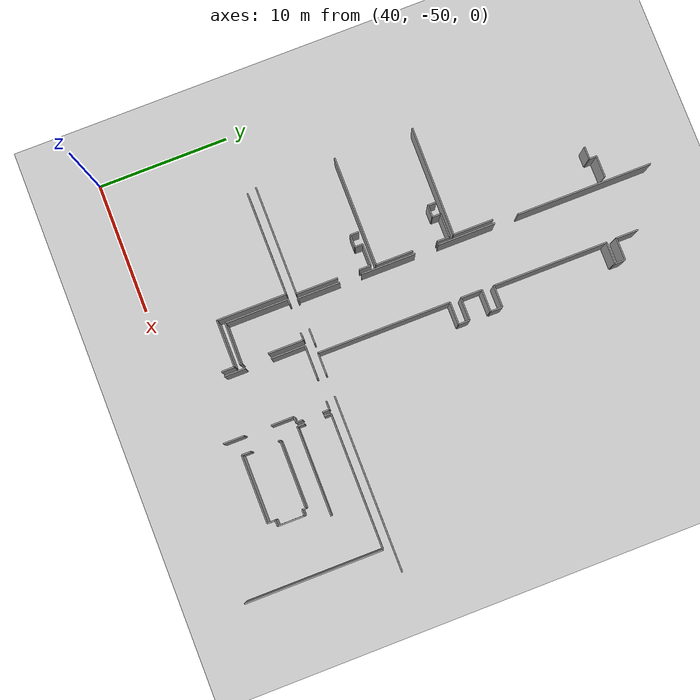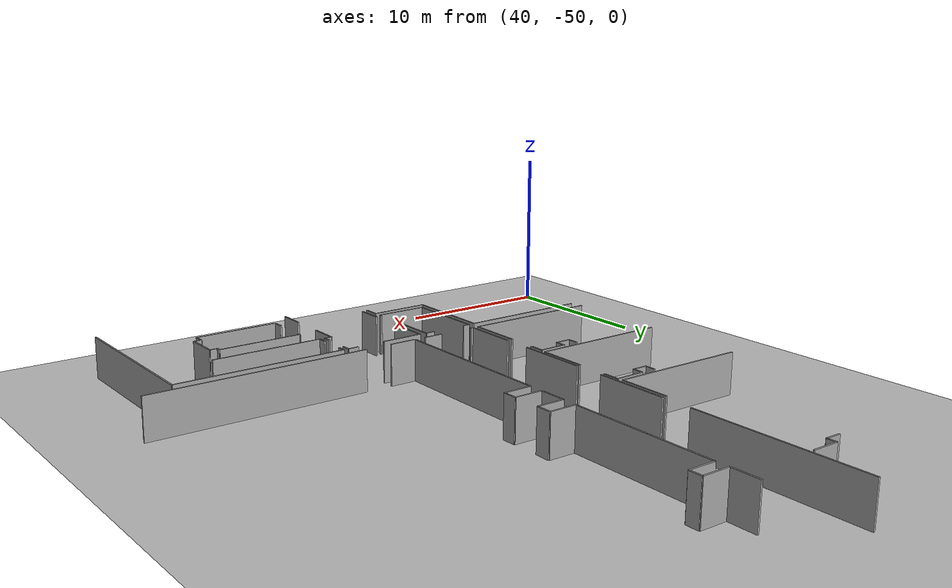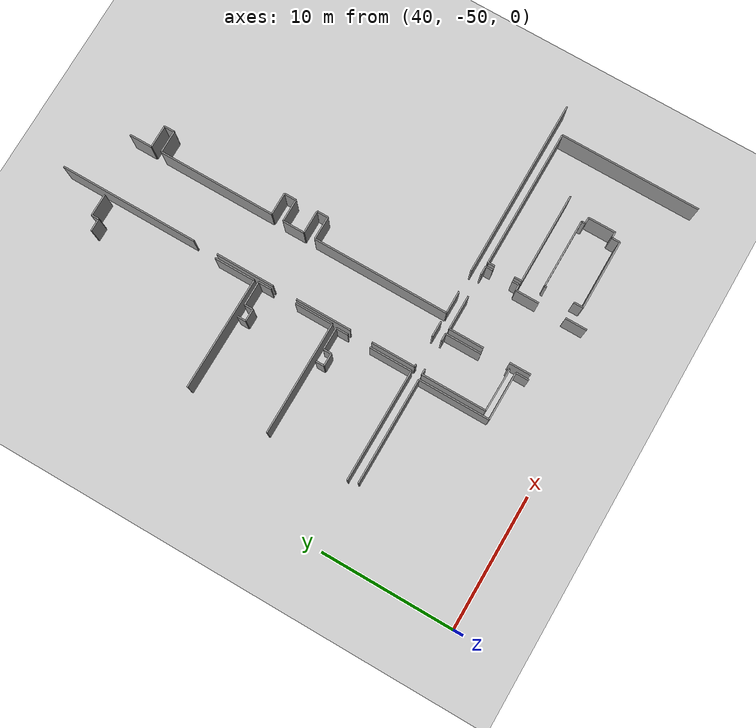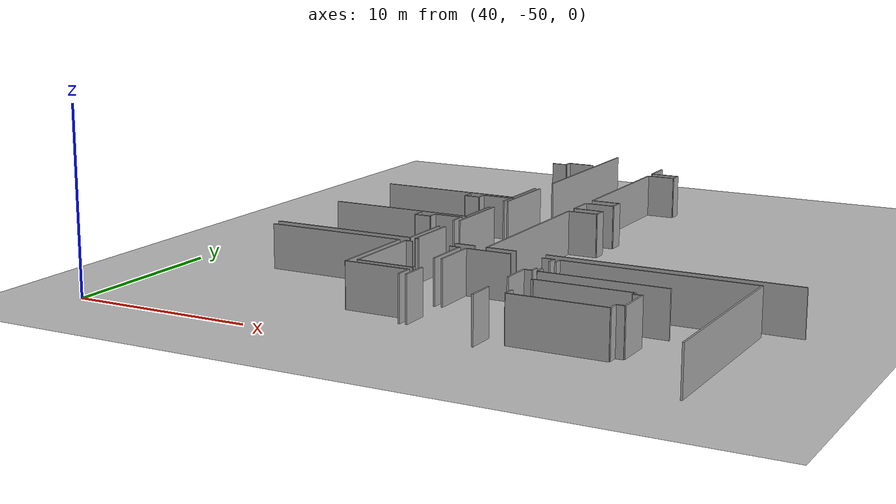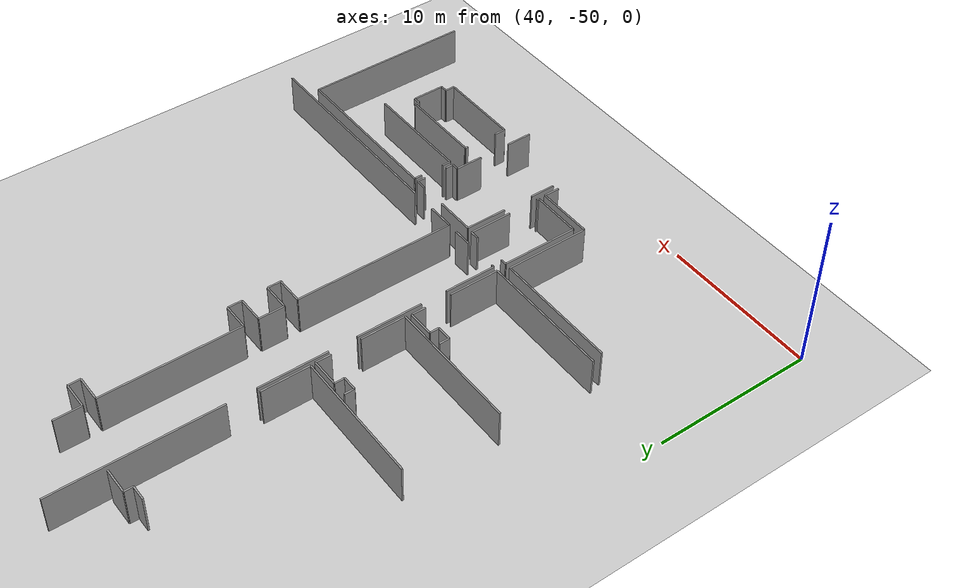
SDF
<sdf version="1.6">
 <world name="default">
  <model name="ground_plane">
   <static>1</static>
   <link name="link">
    <collision name="collision">
     <geometry><plane><normal>0 0 1</normal><size>100 100</size></plane></geometry>
     <surface><friction><ode><mu>100</mu><mu2>50</mu2></ode></friction></surface>
    </collision>
    <visual name="visual">
     <cast_shadows>0</cast_shadows>
     <geometry><plane><normal>0 0 1</normal><size>100 100</size></plane></geometry>
     <material>
      <script><uri>file://media/materials/scripts/gazebo.material</uri><name>Gazebo/Grey</name></script>
     </material>
    </visual>
   </link>
  </model>
  <model name="50036893">
   <static>1</static>
   <link name="Wall_266">
    <collision name="Wall_266_Collision">
     <geometry><box><size>1.59526240038 0.1 2.5</size></box></geometry>
     <pose>0.797631200188 0 1.25 0 0 0</pose>
    </collision>
    <visual name="Wall_266_Visual">
     <pose>0.797631200188 0 1.25 0 0 0</pose>
     <geometry><box><size>1.59526240038 0.1 2.5</size></box></geometry>
     <material>
      <script><uri>file://media/materials/scripts/gazebo.material</uri><name>Gazebo/Grey</name></script>
      <ambient>1 1 1 1</ambient>
     </material>
    </visual>
    <pose>131.065896511 -114.038435933 0 0 0 1.57079632679</pose>
   </link>
   <link name="Wall_267">
    <collision name="Wall_267_Collision">
     <geometry><box><size>2.58488305002 0.1 2.5</size></box></geometry>
     <pose>1.29244152501 0 1.25 0 0 0</pose>
    </collision>
    <visual name="Wall_267_Visual">
     <pose>1.29244152501 0 1.25 0 0 0</pose>
     <geometry><box><size>2.58488305002 0.1 2.5</size></box></geometry>
     <material>
      <script><uri>file://media/materials/scripts/gazebo.material</uri><name>Gazebo/Grey</name></script>
      <ambient>1 1 1 1</ambient>
     </material>
    </visual>
    <pose>131.065896511 -110.473062511 0 0 0 1.57079632679</pose>
   </link>
   <link name="Wall_268">
    <collision name="Wall_268_Collision">
     <geometry><box><size>2.53618823589 0.1 2.5</size></box></geometry>
     <pose>1.26809411795 0 1.25 0 0 0</pose>
    </collision>
    <visual name="Wall_268_Visual">
     <pose>1.26809411795 0 1.25 0 0 0</pose>
     <geometry><box><size>2.53618823589 0.1 2.5</size></box></geometry>
     <material>
      <script><uri>file://media/materials/scripts/gazebo.material</uri><name>Gazebo/Grey</name></script>
      <ambient>1 1 1 1</ambient>
     </material>
    </visual>
    <pose>131.065896511 -107.888179461 0 0 0 0.0</pose>
   </link>
   <link name="Wall_269">
    <collision name="Wall_269_Collision">
     <geometry><box><size>0.649264188388 0.1 2.5</size></box></geometry>
     <pose>0.324632094194 0 1.25 0 0 0</pose>
    </collision>
    <visual name="Wall_269_Visual">
     <pose>0.324632094194 0 1.25 0 0 0</pose>
     <geometry><box><size>0.649264188388 0.1 2.5</size></box></geometry>
     <material>
      <script><uri>file://media/materials/scripts/gazebo.material</uri><name>Gazebo/Grey</name></script>
      <ambient>1 1 1 1</ambient>
     </material>
    </visual>
    <pose>135.339373688 -107.888179461 0 0 0 0.0</pose>
   </link>
   <link name="Wall_270">
    <collision name="Wall_270_Collision">
     <geometry><box><size>0.536150193067 0.1 2.5</size></box></geometry>
     <pose>0.268075096534 0 1.25 0 0 0</pose>
    </collision>
    <visual name="Wall_270_Visual">
     <pose>0.268075096534 0 1.25 0 0 0</pose>
     <geometry><box><size>0.536150193067 0.1 2.5</size></box></geometry>
     <material>
      <script><uri>file://media/materials/scripts/gazebo.material</uri><name>Gazebo/Grey</name></script>
      <ambient>1 1 1 1</ambient>
     </material>
    </visual>
    <pose>135.988637877 -107.888179461 0 0 0 -1.57079632679</pose>
   </link>
   <link name="Wall_271">
    <collision name="Wall_271_Collision">
     <geometry><box><size>0.507491266002 0.1 2.5</size></box></geometry>
     <pose>0.253745633001 0 1.25 0 0 0</pose>
    </collision>
    <visual name="Wall_271_Visual">
     <pose>0.253745633001 0 1.25 0 0 0</pose>
     <geometry><box><size>0.507491266002 0.1 2.5</size></box></geometry>
     <material>
      <script><uri>file://media/materials/scripts/gazebo.material</uri><name>Gazebo/Grey</name></script>
      <ambient>1 1 1 1</ambient>
     </material>
    </visual>
    <pose>135.988637877 -109.920173475 0 0 0 -1.57079632679</pose>
   </link>
   <link name="Wall_272">
    <collision name="Wall_272_Collision">
     <geometry><box><size>0.436224376573 0.1 2.5</size></box></geometry>
     <pose>0.218112188287 0 1.25 0 0 0</pose>
    </collision>
    <visual name="Wall_272_Visual">
     <pose>0.218112188287 0 1.25 0 0 0</pose>
     <geometry><box><size>0.436224376573 0.1 2.5</size></box></geometry>
     <material>
      <script><uri>file://media/materials/scripts/gazebo.material</uri><name>Gazebo/Grey</name></script>
      <ambient>1 1 1 1</ambient>
     </material>
    </visual>
    <pose>135.988637877 -110.427664741 0 0 0 3.14159265359</pose>
   </link>
   <link name="Wall_273">
    <collision name="Wall_273_Collision">
     <geometry><box><size>1.74007874864 0.1 2.5</size></box></geometry>
     <pose>0.870039374322 0 1.25 0 0 0</pose>
    </collision>
    <visual name="Wall_273_Visual">
     <pose>0.870039374322 0 1.25 0 0 0</pose>
     <geometry><box><size>1.74007874864 0.1 2.5</size></box></geometry>
     <material>
      <script><uri>file://media/materials/scripts/gazebo.material</uri><name>Gazebo/Grey</name></script>
      <ambient>1 1 1 1</ambient>
     </material>
    </visual>
    <pose>135.5524135 -110.427664741 0 0 0 -1.57079632679</pose>
   </link>
   <link name="Wall_274">
    <collision name="Wall_274_Collision">
     <geometry><box><size>1.60211010861 0.1 2.5</size></box></geometry>
     <pose>0.801055054306 0 1.25 0 0 0</pose>
    </collision>
    <visual name="Wall_274_Visual">
     <pose>0.801055054306 0 1.25 0 0 0</pose>
     <geometry><box><size>1.60211010861 0.1 2.5</size></box></geometry>
     <material>
      <script><uri>file://media/materials/scripts/gazebo.material</uri><name>Gazebo/Grey</name></script>
      <ambient>1 1 1 1</ambient>
     </material>
    </visual>
    <pose>135.5524135 -114.192889796 0 0 0 -1.57079632679</pose>
   </link>
   <link name="Wall_278">
    <collision name="Wall_278_Collision">
     <geometry><box><size>10.3501841907 0.1 2.5</size></box></geometry>
     <pose>5.17509209534 0 1.25 0 0 0</pose>
    </collision>
    <visual name="Wall_278_Visual">
     <pose>5.17509209534 0 1.25 0 0 0</pose>
     <geometry><box><size>10.3501841907 0.1 2.5</size></box></geometry>
     <material>
      <script><uri>file://media/materials/scripts/gazebo.material</uri><name>Gazebo/Grey</name></script>
      <ambient>1 1 1 1</ambient>
     </material>
    </visual>
    <pose>136.262546206 -107.889954792 0 0 0 0.0</pose>
   </link>
   <link name="Wall_279">
    <collision name="Wall_279_Collision">
     <geometry><box><size>10.4534070519 0.1 2.5</size></box></geometry>
     <pose>5.22670352594 0 1.25 0 0 0</pose>
    </collision>
    <visual name="Wall_279_Visual">
     <pose>5.22670352594 0 1.25 0 0 0</pose>
     <geometry><box><size>10.4534070519 0.1 2.5</size></box></geometry>
     <material>
      <script><uri>file://media/materials/scripts/gazebo.material</uri><name>Gazebo/Grey</name></script>
      <ambient>1 1 1 1</ambient>
     </material>
    </visual>
    <pose>146.612730397 -107.889954792 0 0 0 -1.57079632679</pose>
   </link>
   <link name="Wall_283">
    <collision name="Wall_283_Collision">
     <geometry><box><size>6.79952066042 0.1 2.5</size></box></geometry>
     <pose>3.39976033021 0 1.25 0 0 0</pose>
    </collision>
    <visual name="Wall_283_Visual">
     <pose>3.39976033021 0 1.25 0 0 0</pose>
     <geometry><box><size>6.79952066042 0.1 2.5</size></box></geometry>
     <material>
      <script><uri>file://media/materials/scripts/gazebo.material</uri><name>Gazebo/Grey</name></script>
      <ambient>1 1 1 1</ambient>
     </material>
    </visual>
    <pose>143.092501125 -110.448968722 0 0 0 3.14159265359</pose>
   </link>
   <link name="Wall_284">
    <collision name="Wall_284_Collision">
     <geometry><box><size>0.54553408954 0.1 2.5</size></box></geometry>
     <pose>0.27276704477 0 1.25 0 0 0</pose>
    </collision>
    <visual name="Wall_284_Visual">
     <pose>0.27276704477 0 1.25 0 0 0</pose>
     <geometry><box><size>0.54553408954 0.1 2.5</size></box></geometry>
     <material>
      <script><uri>file://media/materials/scripts/gazebo.material</uri><name>Gazebo/Grey</name></script>
      <ambient>1 1 1 1</ambient>
     </material>
    </visual>
    <pose>136.292980465 -110.448968722 0 0 0 1.57079632679</pose>
   </link>
   <link name="Wall_285">
    <collision name="Wall_285_Collision">
     <geometry><box><size>0.470209298934 0.1 2.5</size></box></geometry>
     <pose>0.235104649467 0 1.25 0 0 0</pose>
    </collision>
    <visual name="Wall_285_Visual">
     <pose>0.235104649467 0 1.25 0 0 0</pose>
     <geometry><box><size>0.470209298934 0.1 2.5</size></box></geometry>
     <material>
      <script><uri>file://media/materials/scripts/gazebo.material</uri><name>Gazebo/Grey</name></script>
      <ambient>1 1 1 1</ambient>
     </material>
    </visual>
    <pose>136.292980465 -108.398206915 0 0 0 1.57079632679</pose>
   </link>
   <link name="Wall_286">
    <collision name="Wall_286_Collision">
     <geometry><box><size>0.0487185850918 0.1 2.5</size></box></geometry>
     <pose>0.0243592925459 0 1.25 0 0 0</pose>
    </collision>
    <visual name="Wall_286_Visual">
     <pose>0.0243592925459 0 1.25 0 0 0</pose>
     <geometry><box><size>0.0487185850918 0.1 2.5</size></box></geometry>
     <material>
      <script><uri>file://media/materials/scripts/gazebo.material</uri><name>Gazebo/Grey</name></script>
      <ambient>1 1 1 1</ambient>
     </material>
    </visual>
    <pose>136.292980465 -107.927997616 0 0 0 2.24553726902</pose>
   </link>
   <link name="Wall_287">
    <collision name="Wall_287_Collision">
     <geometry><box><size>5.10534691885 0.1 2.5</size></box></geometry>
     <pose>2.55267345942 0 1.25 0 0 0</pose>
    </collision>
    <visual name="Wall_287_Visual">
     <pose>2.55267345942 0 1.25 0 0 0</pose>
     <geometry><box><size>5.10534691885 0.1 2.5</size></box></geometry>
     <material>
      <script><uri>file://media/materials/scripts/gazebo.material</uri><name>Gazebo/Grey</name></script>
      <ambient>1 1 1 1</ambient>
     </material>
    </visual>
    <pose>136.812899053 -111.935682266 0 0 0 0.0</pose>
   </link>
   <link name="Wall_288">
    <collision name="Wall_288_Collision">
     <geometry><box><size>0.275683661241 0.1 2.5</size></box></geometry>
     <pose>0.137841830621 0 1.25 0 0 0</pose>
    </collision>
    <visual name="Wall_288_Visual">
     <pose>0.137841830621 0 1.25 0 0 0</pose>
     <geometry><box><size>0.275683661241 0.1 2.5</size></box></geometry>
     <material>
      <script><uri>file://media/materials/scripts/gazebo.material</uri><name>Gazebo/Grey</name></script>
      <ambient>1 1 1 1</ambient>
     </material>
    </visual>
    <pose>141.918245972 -111.935682266 0 0 0 -1.57079632679</pose>
   </link>
   <link name="Wall_289">
    <collision name="Wall_289_Collision">
     <geometry><box><size>0.461586258932 0.1 2.5</size></box></geometry>
     <pose>0.230793129466 0 1.25 0 0 0</pose>
    </collision>
    <visual name="Wall_289_Visual">
     <pose>0.230793129466 0 1.25 0 0 0</pose>
     <geometry><box><size>0.461586258932 0.1 2.5</size></box></geometry>
     <material>
      <script><uri>file://media/materials/scripts/gazebo.material</uri><name>Gazebo/Grey</name></script>
      <ambient>1 1 1 1</ambient>
     </material>
    </visual>
    <pose>141.918245972 -112.211365928 0 0 0 0.0</pose>
   </link>
   <link name="Wall_290">
    <collision name="Wall_290_Collision">
     <geometry><box><size>2.02996506401 0.1 2.5</size></box></geometry>
     <pose>1.014982532 0 1.25 0 0 0</pose>
    </collision>
    <visual name="Wall_290_Visual">
     <pose>1.014982532 0 1.25 0 0 0</pose>
     <geometry><box><size>2.02996506401 0.1 2.5</size></box></geometry>
     <material>
      <script><uri>file://media/materials/scripts/gazebo.material</uri><name>Gazebo/Grey</name></script>
      <ambient>1 1 1 1</ambient>
     </material>
    </visual>
    <pose>142.379832231 -112.211365928 0 0 0 -1.57079632679</pose>
   </link>
   <link name="Wall_291">
    <collision name="Wall_291_Collision">
     <geometry><box><size>0.448905317753 0.1 2.5</size></box></geometry>
     <pose>0.224452658876 0 1.25 0 0 0</pose>
    </collision>
    <visual name="Wall_291_Visual">
     <pose>0.224452658876 0 1.25 0 0 0</pose>
     <geometry><box><size>0.448905317753 0.1 2.5</size></box></geometry>
     <material>
      <script><uri>file://media/materials/scripts/gazebo.material</uri><name>Gazebo/Grey</name></script>
      <ambient>1 1 1 1</ambient>
     </material>
    </visual>
    <pose>142.379832231 -114.241330992 0 0 0 3.14159265359</pose>
   </link>
   <link name="Wall_292">
    <collision name="Wall_292_Collision">
     <geometry><box><size>0.608938795437 0.1 2.5</size></box></geometry>
     <pose>0.304469397719 0 1.25 0 0 0</pose>
    </collision>
    <visual name="Wall_292_Visual">
     <pose>0.304469397719 0 1.25 0 0 0</pose>
     <geometry><box><size>0.608938795437 0.1 2.5</size></box></geometry>
     <material>
      <script><uri>file://media/materials/scripts/gazebo.material</uri><name>Gazebo/Grey</name></script>
      <ambient>1 1 1 1</ambient>
     </material>
    </visual>
    <pose>141.930926913 -114.241330992 0 0 0 -1.57079632679</pose>
   </link>
   <link name="Wall_293">
    <collision name="Wall_293_Collision">
     <geometry><box><size>5.16114306004 0.1 2.5</size></box></geometry>
     <pose>2.58057153002 0 1.25 0 0 0</pose>
    </collision>
    <visual name="Wall_293_Visual">
     <pose>2.58057153002 0 1.25 0 0 0</pose>
     <geometry><box><size>5.16114306004 0.1 2.5</size></box></geometry>
     <material>
      <script><uri>file://media/materials/scripts/gazebo.material</uri><name>Gazebo/Grey</name></script>
      <ambient>1 1 1 1</ambient>
     </material>
    </visual>
    <pose>141.930926913 -114.850269787 0 0 0 3.14159265359</pose>
   </link>
   <link name="Wall_294">
    <collision name="Wall_294_Collision">
     <geometry><box><size>0.695930051928 0.1 2.5</size></box></geometry>
     <pose>0.347965025964 0 1.25 0 0 0</pose>
    </collision>
    <visual name="Wall_294_Visual">
     <pose>0.347965025964 0 1.25 0 0 0</pose>
     <geometry><box><size>0.695930051928 0.1 2.5</size></box></geometry>
     <material>
      <script><uri>file://media/materials/scripts/gazebo.material</uri><name>Gazebo/Grey</name></script>
      <ambient>1 1 1 1</ambient>
     </material>
    </visual>
    <pose>136.769783853 -114.850269787 0 0 0 1.57079632679</pose>
   </link>
   <link name="Wall_295">
    <collision name="Wall_295_Collision">
     <geometry><box><size>0.165866710627 0.1 2.5</size></box></geometry>
     <pose>0.0829333553136 0 1.25 0 0 0</pose>
    </collision>
    <visual name="Wall_295_Visual">
     <pose>0.0829333553136 0 1.25 0 0 0</pose>
     <geometry><box><size>0.165866710627 0.1 2.5</size></box></geometry>
     <material>
      <script><uri>file://media/materials/scripts/gazebo.material</uri><name>Gazebo/Grey</name></script>
      <ambient>1 1 1 1</ambient>
     </material>
    </visual>
    <pose>136.769783853 -112.100280883 0 0 0 1.57079632679</pose>
   </link>
   <link name="Wall_296">
    <collision name="Wall_296_Collision">
     <geometry><box><size>0.0431338444219 0.1 2.5</size></box></geometry>
     <pose>0.0215669222109 0 1.25 0 0 0</pose>
    </collision>
    <visual name="Wall_296_Visual">
     <pose>0.0215669222109 0 1.25 0 0 0</pose>
     <geometry><box><size>0.0431338444219 0.1 2.5</size></box></geometry>
     <material>
      <script><uri>file://media/materials/scripts/gazebo.material</uri><name>Gazebo/Grey</name></script>
      <ambient>1 1 1 1</ambient>
     </material>
    </visual>
    <pose>136.769783853 -111.934414172 0 0 0 -0.0294032882044</pose>
   </link>
   <link name="Wall_298">
    <collision name="Wall_298_Collision">
     <geometry><box><size>7.87486447244 0.1 2.5</size></box></geometry>
     <pose>3.93743223622 0 1.25 0 0 0</pose>
    </collision>
    <visual name="Wall_298_Visual">
     <pose>3.93743223622 0 1.25 0 0 0</pose>
     <geometry><box><size>7.87486447244 0.1 2.5</size></box></geometry>
     <material>
      <script><uri>file://media/materials/scripts/gazebo.material</uri><name>Gazebo/Grey</name></script>
      <ambient>1 1 1 1</ambient>
     </material>
    </visual>
    <pose>119.237114579 -107.832129701 0 0 0 0.0</pose>
   </link>
   <link name="Wall_299">
    <collision name="Wall_299_Collision">
     <geometry><box><size>5.29277122948 0.1 2.5</size></box></geometry>
     <pose>2.64638561474 0 1.25 0 0 0</pose>
    </collision>
    <visual name="Wall_299_Visual">
     <pose>2.64638561474 0 1.25 0 0 0</pose>
     <geometry><box><size>5.29277122948 0.1 2.5</size></box></geometry>
     <material>
      <script><uri>file://media/materials/scripts/gazebo.material</uri><name>Gazebo/Grey</name></script>
      <ambient>1 1 1 1</ambient>
     </material>
    </visual>
    <pose>127.111979051 -107.832129701 0 0 0 -1.57079632679</pose>
   </link>
   <link name="Wall_300">
    <collision name="Wall_300_Collision">
     <geometry><box><size>3.58109778908 0.1 2.5</size></box></geometry>
     <pose>1.79054889454 0 1.25 0 0 0</pose>
    </collision>
    <visual name="Wall_300_Visual">
     <pose>1.79054889454 0 1.25 0 0 0</pose>
     <geometry><box><size>3.58109778908 0.1 2.5</size></box></geometry>
     <material>
      <script><uri>file://media/materials/scripts/gazebo.material</uri><name>Gazebo/Grey</name></script>
      <ambient>1 1 1 1</ambient>
     </material>
    </visual>
    <pose>127.111979051 -113.12490093 0 0 0 0.0</pose>
   </link>
   <link name="Wall_301">
    <collision name="Wall_301_Collision">
     <geometry><box><size>0.986069986114 0.1 2.5</size></box></geometry>
     <pose>0.493034993057 0 1.25 0 0 0</pose>
    </collision>
    <visual name="Wall_301_Visual">
     <pose>0.493034993057 0 1.25 0 0 0</pose>
     <geometry><box><size>0.986069986114 0.1 2.5</size></box></geometry>
     <material>
      <script><uri>file://media/materials/scripts/gazebo.material</uri><name>Gazebo/Grey</name></script>
      <ambient>1 1 1 1</ambient>
     </material>
    </visual>
    <pose>130.69307684 -113.12490093 0 0 0 -1.57079632679</pose>
   </link>
   <link name="Wall_313">
    <collision name="Wall_313_Collision">
     <geometry><box><size>13.3251329914 0.1 2.5</size></box></geometry>
     <pose>6.66256649569 0 1.25 0 0 0</pose>
    </collision>
    <visual name="Wall_313_Visual">
     <pose>6.66256649569 0 1.25 0 0 0</pose>
     <geometry><box><size>13.3251329914 0.1 2.5</size></box></geometry>
     <material>
      <script><uri>file://media/materials/scripts/gazebo.material</uri><name>Gazebo/Grey</name></script>
      <ambient>1 1 1 1</ambient>
     </material>
    </visual>
    <pose>148.557986774 -107.194024741 0 0 0 3.14159265359</pose>
   </link>
   <link name="Wall_314">
    <collision name="Wall_314_Collision">
     <geometry><box><size>1.67642042392 0.1 2.5</size></box></geometry>
     <pose>0.838210211962 0 1.25 0 0 0</pose>
    </collision>
    <visual name="Wall_314_Visual">
     <pose>0.838210211962 0 1.25 0 0 0</pose>
     <geometry><box><size>1.67642042392 0.1 2.5</size></box></geometry>
     <material>
      <script><uri>file://media/materials/scripts/gazebo.material</uri><name>Gazebo/Grey</name></script>
      <ambient>1 1 1 1</ambient>
     </material>
    </visual>
    <pose>133.576722864 -107.194024741 0 0 0 3.14159265359</pose>
   </link>
   <link name="Wall_315">
    <collision name="Wall_315_Collision">
     <geometry><box><size>10.1373979977 0.1 2.5</size></box></geometry>
     <pose>5.06869899884 0 1.25 0 0 0</pose>
    </collision>
    <visual name="Wall_315_Visual">
     <pose>5.06869899884 0 1.25 0 0 0</pose>
     <geometry><box><size>10.1373979977 0.1 2.5</size></box></geometry>
     <material>
      <script><uri>file://media/materials/scripts/gazebo.material</uri><name>Gazebo/Grey</name></script>
      <ambient>1 1 1 1</ambient>
     </material>
    </visual>
    <pose>131.90030244 -107.194024741 0 0 0 1.57079632679</pose>
   </link>
   <link name="Wall_316">
    <collision name="Wall_316_Collision">
     <geometry><box><size>1.71446324746 0.1 2.5</size></box></geometry>
     <pose>0.857231623731 0 1.25 0 0 0</pose>
    </collision>
    <visual name="Wall_316_Visual">
     <pose>0.857231623731 0 1.25 0 0 0</pose>
     <geometry><box><size>1.71446324746 0.1 2.5</size></box></geometry>
     <material>
      <script><uri>file://media/materials/scripts/gazebo.material</uri><name>Gazebo/Grey</name></script>
      <ambient>1 1 1 1</ambient>
     </material>
    </visual>
    <pose>131.90030244 -97.0566267428 0 0 0 0.0</pose>
   </link>
   <link name="Wall_317">
    <collision name="Wall_317_Collision">
     <geometry><box><size>0.844804301375 0.1 2.5</size></box></geometry>
     <pose>0.422402150688 0 1.25 0 0 0</pose>
    </collision>
    <visual name="Wall_317_Visual">
     <pose>0.422402150688 0 1.25 0 0 0</pose>
     <geometry><box><size>0.844804301375 0.1 2.5</size></box></geometry>
     <material>
      <script><uri>file://media/materials/scripts/gazebo.material</uri><name>Gazebo/Grey</name></script>
      <ambient>1 1 1 1</ambient>
     </material>
    </visual>
    <pose>133.614765688 -97.0566267428 0 0 0 1.57079632679</pose>
   </link>
   <link name="Wall_318">
    <collision name="Wall_318_Collision">
     <geometry><box><size>1.72714418864 0.1 2.5</size></box></geometry>
     <pose>0.863572094321 0 1.25 0 0 0</pose>
    </collision>
    <visual name="Wall_318_Visual">
     <pose>0.863572094321 0 1.25 0 0 0</pose>
     <geometry><box><size>1.72714418864 0.1 2.5</size></box></geometry>
     <material>
      <script><uri>file://media/materials/scripts/gazebo.material</uri><name>Gazebo/Grey</name></script>
      <ambient>1 1 1 1</ambient>
     </material>
    </visual>
    <pose>133.614765688 -96.2118224415 0 0 0 3.14159265359</pose>
   </link>
   <link name="Wall_319">
    <collision name="Wall_319_Collision">
     <geometry><box><size>1.62645751568 0.1 2.5</size></box></geometry>
     <pose>0.813228757838 0 1.25 0 0 0</pose>
    </collision>
    <visual name="Wall_319_Visual">
     <pose>0.813228757838 0 1.25 0 0 0</pose>
     <geometry><box><size>1.62645751568 0.1 2.5</size></box></geometry>
     <material>
      <script><uri>file://media/materials/scripts/gazebo.material</uri><name>Gazebo/Grey</name></script>
      <ambient>1 1 1 1</ambient>
     </material>
    </visual>
    <pose>131.887621499 -96.2118224415 0 0 0 1.57079632679</pose>
   </link>
   <link name="Wall_320">
    <collision name="Wall_320_Collision">
     <geometry><box><size>1.6891013651 0.1 2.5</size></box></geometry>
     <pose>0.844550682552 0 1.25 0 0 0</pose>
    </collision>
    <visual name="Wall_320_Visual">
     <pose>0.844550682552 0 1.25 0 0 0</pose>
     <geometry><box><size>1.6891013651 0.1 2.5</size></box></geometry>
     <material>
      <script><uri>file://media/materials/scripts/gazebo.material</uri><name>Gazebo/Grey</name></script>
      <ambient>1 1 1 1</ambient>
     </material>
    </visual>
    <pose>131.887621499 -94.5853649258 0 0 0 0.0</pose>
   </link>
   <link name="Wall_321">
    <collision name="Wall_321_Collision">
     <geometry><box><size>0.907955388449 0.1 2.5</size></box></geometry>
     <pose>0.453977694224 0 1.25 0 0 0</pose>
    </collision>
    <visual name="Wall_321_Visual">
     <pose>0.453977694224 0 1.25 0 0 0</pose>
     <geometry><box><size>0.907955388449 0.1 2.5</size></box></geometry>
     <material>
      <script><uri>file://media/materials/scripts/gazebo.material</uri><name>Gazebo/Grey</name></script>
      <ambient>1 1 1 1</ambient>
     </material>
    </visual>
    <pose>133.576722864 -94.5853649258 0 0 0 1.57079632679</pose>
   </link>
   <link name="Wall_322">
    <collision name="Wall_322_Collision">
     <geometry><box><size>1.66373948274 0.1 2.5</size></box></geometry>
     <pose>0.831869741372 0 1.25 0 0 0</pose>
    </collision>
    <visual name="Wall_322_Visual">
     <pose>0.831869741372 0 1.25 0 0 0</pose>
     <geometry><box><size>1.66373948274 0.1 2.5</size></box></geometry>
     <material>
      <script><uri>file://media/materials/scripts/gazebo.material</uri><name>Gazebo/Grey</name></script>
      <ambient>1 1 1 1</ambient>
     </material>
    </visual>
    <pose>133.576722864 -93.6774095373 0 0 0 3.14159265359</pose>
   </link>
   <link name="Wall_323">
    <collision name="Wall_323_Collision">
     <geometry><box><size>8.73818294794 0.1 2.5</size></box></geometry>
     <pose>4.36909147397 0 1.25 0 0 0</pose>
    </collision>
    <visual name="Wall_323_Visual">
     <pose>4.36909147397 0 1.25 0 0 0</pose>
     <geometry><box><size>8.73818294794 0.1 2.5</size></box></geometry>
     <material>
      <script><uri>file://media/materials/scripts/gazebo.material</uri><name>Gazebo/Grey</name></script>
      <ambient>1 1 1 1</ambient>
     </material>
    </visual>
    <pose>131.912983382 -93.6774095373 0 0 0 1.57079632679</pose>
   </link>
   <link name="Wall_324">
    <collision name="Wall_324_Collision">
     <geometry><box><size>1.65105854156 0.1 2.5</size></box></geometry>
     <pose>0.825529270782 0 1.25 0 0 0</pose>
    </collision>
    <visual name="Wall_324_Visual">
     <pose>0.825529270782 0 1.25 0 0 0</pose>
     <geometry><box><size>1.65105854156 0.1 2.5</size></box></geometry>
     <material>
      <script><uri>file://media/materials/scripts/gazebo.material</uri><name>Gazebo/Grey</name></script>
      <ambient>1 1 1 1</ambient>
     </material>
    </visual>
    <pose>131.912983382 -84.9392265894 0 0 0 0.0</pose>
   </link>
   <link name="Wall_325">
    <collision name="Wall_325_Collision">
     <geometry><box><size>0.769225891946 0.1 2.5</size></box></geometry>
     <pose>0.384612945973 0 1.25 0 0 0</pose>
    </collision>
    <visual name="Wall_325_Visual">
     <pose>0.384612945973 0 1.25 0 0 0</pose>
     <geometry><box><size>0.769225891946 0.1 2.5</size></box></geometry>
     <material>
      <script><uri>file://media/materials/scripts/gazebo.material</uri><name>Gazebo/Grey</name></script>
      <ambient>1 1 1 1</ambient>
     </material>
    </visual>
    <pose>133.564041923 -84.9392265894 0 0 0 1.57079632679</pose>
   </link>
   <link name="Wall_326">
    <collision name="Wall_326_Collision">
     <geometry><box><size>1.6891013651 0.1 2.5</size></box></geometry>
     <pose>0.844550682552 0 1.25 0 0 0</pose>
    </collision>
    <visual name="Wall_326_Visual">
     <pose>0.844550682552 0 1.25 0 0 0</pose>
     <geometry><box><size>1.6891013651 0.1 2.5</size></box></geometry>
     <material>
      <script><uri>file://media/materials/scripts/gazebo.material</uri><name>Gazebo/Grey</name></script>
      <ambient>1 1 1 1</ambient>
     </material>
    </visual>
    <pose>133.564041923 -84.1700006975 0 0 0 3.14159265359</pose>
   </link>
   <link name="Wall_327">
    <collision name="Wall_327_Collision">
     <geometry><box><size>1.70228954393 0.1 2.5</size></box></geometry>
     <pose>0.851144771965 0 1.25 0 0 0</pose>
    </collision>
    <visual name="Wall_327_Visual">
     <pose>0.851144771965 0 1.25 0 0 0</pose>
     <geometry><box><size>1.70228954393 0.1 2.5</size></box></geometry>
     <material>
      <script><uri>file://media/materials/scripts/gazebo.material</uri><name>Gazebo/Grey</name></script>
      <ambient>1 1 1 1</ambient>
     </material>
    </visual>
    <pose>131.874940558 -84.1700006975 0 0 0 1.57079632679</pose>
   </link>
   <link name="Wall_371">
    <collision name="Wall_371_Collision">
     <geometry><box><size>4.80049709289 0.1 2.5</size></box></geometry>
     <pose>2.40024854645 0 1.25 0 0 0</pose>
    </collision>
    <visual name="Wall_371_Visual">
     <pose>2.40024854645 0 1.25 0 0 0</pose>
     <geometry><box><size>4.80049709289 0.1 2.5</size></box></geometry>
     <material>
      <script><uri>file://media/materials/scripts/gazebo.material</uri><name>Gazebo/Grey</name></script>
      <ambient>1 1 1 1</ambient>
     </material>
    </visual>
    <pose>127.505088228 -112.639474502 0 0 0 1.57079632679</pose>
   </link>
   <link name="Wall_372">
    <collision name="Wall_372_Collision">
     <geometry><box><size>0.405790117743 0.1 2.5</size></box></geometry>
     <pose>0.202895058871 0 1.25 0 0 0</pose>
    </collision>
    <visual name="Wall_372_Visual">
     <pose>0.202895058871 0 1.25 0 0 0</pose>
     <geometry><box><size>0.405790117743 0.1 2.5</size></box></geometry>
     <material>
      <script><uri>file://media/materials/scripts/gazebo.material</uri><name>Gazebo/Grey</name></script>
      <ambient>1 1 1 1</ambient>
     </material>
    </visual>
    <pose>127.505088228 -107.838977409 0 0 0 0.0</pose>
   </link>
   <link name="Wall_373">
    <collision name="Wall_373_Collision">
     <geometry><box><size>0.56810616484 0.1 2.5</size></box></geometry>
     <pose>0.28405308242 0 1.25 0 0 0</pose>
    </collision>
    <visual name="Wall_373_Visual">
     <pose>0.28405308242 0 1.25 0 0 0</pose>
     <geometry><box><size>0.56810616484 0.1 2.5</size></box></geometry>
     <material>
      <script><uri>file://media/materials/scripts/gazebo.material</uri><name>Gazebo/Grey</name></script>
      <ambient>1 1 1 1</ambient>
     </material>
    </visual>
    <pose>130.092000228 -107.838977409 0 0 0 0.0</pose>
   </link>
   <link name="Wall_374">
    <collision name="Wall_374_Collision">
     <geometry><box><size>2.69013486181 0.1 2.5</size></box></geometry>
     <pose>1.3450674309 0 1.25 0 0 0</pose>
    </collision>
    <visual name="Wall_374_Visual">
     <pose>1.3450674309 0 1.25 0 0 0</pose>
     <geometry><box><size>2.69013486181 0.1 2.5</size></box></geometry>
     <material>
      <script><uri>file://media/materials/scripts/gazebo.material</uri><name>Gazebo/Grey</name></script>
      <ambient>1 1 1 1</ambient>
     </material>
    </visual>
    <pose>130.660106393 -107.838977409 0 0 0 -1.57079632679</pose>
   </link>
   <link name="Wall_375">
    <collision name="Wall_375_Collision">
     <geometry><box><size>0.152424912977 0.1 2.5</size></box></geometry>
     <pose>0.0762124564885 0 1.25 0 0 0</pose>
    </collision>
    <visual name="Wall_375_Visual">
     <pose>0.0762124564885 0 1.25 0 0 0</pose>
     <geometry><box><size>0.152424912977 0.1 2.5</size></box></geometry>
     <material>
      <script><uri>file://media/materials/scripts/gazebo.material</uri><name>Gazebo/Grey</name></script>
      <ambient>1 1 1 1</ambient>
     </material>
    </visual>
    <pose>130.660106393 -112.521795368 0 0 0 -1.57079632679</pose>
   </link>
   <link name="Wall_376">
    <collision name="Wall_376_Collision">
     <geometry><box><size>3.15520948488 0.1 2.5</size></box></geometry>
     <pose>1.57760474244 0 1.25 0 0 0</pose>
    </collision>
    <visual name="Wall_376_Visual">
     <pose>1.57760474244 0 1.25 0 0 0</pose>
     <geometry><box><size>3.15520948488 0.1 2.5</size></box></geometry>
     <material>
      <script><uri>file://media/materials/scripts/gazebo.material</uri><name>Gazebo/Grey</name></script>
      <ambient>1 1 1 1</ambient>
     </material>
    </visual>
    <pose>130.660106393 -112.674220281 0 0 0 3.13058023705</pose>
   </link>
   <link name="Wall_379">
    <collision name="Wall_379_Collision">
     <geometry><box><size>0.63810496015 0.1 2.5</size></box></geometry>
     <pose>0.319052480075 0 1.25 0 0 0</pose>
    </collision>
    <visual name="Wall_379_Visual">
     <pose>0.319052480075 0 1.25 0 0 0</pose>
     <geometry><box><size>0.63810496015 0.1 2.5</size></box></geometry>
     <material>
      <script><uri>file://media/materials/scripts/gazebo.material</uri><name>Gazebo/Grey</name></script>
      <ambient>1 1 1 1</ambient>
     </material>
    </visual>
    <pose>124.763468745 -101.350139807 0 0 0 -1.57079632679</pose>
   </link>
   <link name="Wall_380">
    <collision name="Wall_380_Collision">
     <geometry><box><size>0.940925835516 0.1 2.5</size></box></geometry>
     <pose>0.470462917758 0 1.25 0 0 0</pose>
    </collision>
    <visual name="Wall_380_Visual">
     <pose>0.470462917758 0 1.25 0 0 0</pose>
     <geometry><box><size>0.940925835516 0.1 2.5</size></box></geometry>
     <material>
      <script><uri>file://media/materials/scripts/gazebo.material</uri><name>Gazebo/Grey</name></script>
      <ambient>1 1 1 1</ambient>
     </material>
    </visual>
    <pose>124.763468745 -101.988244768 0 0 0 0.0</pose>
   </link>
   <link name="Wall_381">
    <collision name="Wall_381_Collision">
     <geometry><box><size>0.594482522493 0.1 2.5</size></box></geometry>
     <pose>0.297241261246 0 1.25 0 0 0</pose>
    </collision>
    <visual name="Wall_381_Visual">
     <pose>0.297241261246 0 1.25 0 0 0</pose>
     <geometry><box><size>0.594482522493 0.1 2.5</size></box></geometry>
     <material>
      <script><uri>file://media/materials/scripts/gazebo.material</uri><name>Gazebo/Grey</name></script>
      <ambient>1 1 1 1</ambient>
     </material>
    </visual>
    <pose>125.70439458 -101.988244768 0 0 0 1.57079632679</pose>
   </link>
   <link name="Wall_382">
    <collision name="Wall_382_Collision">
     <geometry><box><size>1.6535947298 0.1 2.5</size></box></geometry>
     <pose>0.8267973649 0 1.25 0 0 0</pose>
    </collision>
    <visual name="Wall_382_Visual">
     <pose>0.8267973649 0 1.25 0 0 0</pose>
     <geometry><box><size>1.6535947298 0.1 2.5</size></box></geometry>
     <material>
      <script><uri>file://media/materials/scripts/gazebo.material</uri><name>Gazebo/Grey</name></script>
      <ambient>1 1 1 1</ambient>
     </material>
    </visual>
    <pose>125.70439458 -101.393762245 0 0 0 0.0</pose>
   </link>
   <link name="Wall_383">
    <collision name="Wall_383_Collision">
     <geometry><box><size>0.908462626096 0.1 2.5</size></box></geometry>
     <pose>0.454231313048 0 1.25 0 0 0</pose>
    </collision>
    <visual name="Wall_383_Visual">
     <pose>0.454231313048 0 1.25 0 0 0</pose>
     <geometry><box><size>0.908462626096 0.1 2.5</size></box></geometry>
     <material>
      <script><uri>file://media/materials/scripts/gazebo.material</uri><name>Gazebo/Grey</name></script>
      <ambient>1 1 1 1</ambient>
     </material>
    </visual>
    <pose>127.35798931 -101.393762245 0 0 0 -1.57079632679</pose>
   </link>
   <link name="Wall_384">
    <collision name="Wall_384_Collision">
     <geometry><box><size>3.17074253251 0.1 2.5</size></box></geometry>
     <pose>1.58537126626 0 1.25 0 0 0</pose>
    </collision>
    <visual name="Wall_384_Visual">
     <pose>1.58537126626 0 1.25 0 0 0</pose>
     <geometry><box><size>3.17074253251 0.1 2.5</size></box></geometry>
     <material>
      <script><uri>file://media/materials/scripts/gazebo.material</uri><name>Gazebo/Grey</name></script>
      <ambient>1 1 1 1</ambient>
     </material>
    </visual>
    <pose>127.35798931 -103.965203497 0 0 0 -1.57079632679</pose>
   </link>
   <link name="Wall_385">
    <collision name="Wall_385_Collision">
     <geometry><box><size>8.31113913922 0.1 2.5</size></box></geometry>
     <pose>4.15556956961 0 1.25 0 0 0</pose>
    </collision>
    <visual name="Wall_385_Visual">
     <pose>4.15556956961 0 1.25 0 0 0</pose>
     <geometry><box><size>8.31113913922 0.1 2.5</size></box></geometry>
     <material>
      <script><uri>file://media/materials/scripts/gazebo.material</uri><name>Gazebo/Grey</name></script>
      <ambient>1 1 1 1</ambient>
     </material>
    </visual>
    <pose>127.35798931 -107.13594603 0 0 0 3.13811387605</pose>
   </link>
   <link name="Wall_388">
    <collision name="Wall_388_Collision">
     <geometry><box><size>0.630496395442 0.1 2.5</size></box></geometry>
     <pose>0.315248197721 0 1.25 0 0 0</pose>
    </collision>
    <visual name="Wall_388_Visual">
     <pose>0.315248197721 0 1.25 0 0 0</pose>
     <geometry><box><size>0.630496395442 0.1 2.5</size></box></geometry>
     <material>
      <script><uri>file://media/materials/scripts/gazebo.material</uri><name>Gazebo/Grey</name></script>
      <ambient>1 1 1 1</ambient>
     </material>
    </visual>
    <pose>124.750787803 -95.3419098766 0 0 0 -1.57079632679</pose>
   </link>
   <link name="Wall_389">
    <collision name="Wall_389_Collision">
     <geometry><box><size>0.907955388449 0.1 2.5</size></box></geometry>
     <pose>0.453977694224 0 1.25 0 0 0</pose>
    </collision>
    <visual name="Wall_389_Visual">
     <pose>0.453977694224 0 1.25 0 0 0</pose>
     <geometry><box><size>0.907955388449 0.1 2.5</size></box></geometry>
     <material>
      <script><uri>file://media/materials/scripts/gazebo.material</uri><name>Gazebo/Grey</name></script>
      <ambient>1 1 1 1</ambient>
     </material>
    </visual>
    <pose>124.750787803 -95.972406272 0 0 0 0.0</pose>
   </link>
   <link name="Wall_390">
    <collision name="Wall_390_Collision">
     <geometry><box><size>0.630496395442 0.1 2.5</size></box></geometry>
     <pose>0.315248197721 0 1.25 0 0 0</pose>
    </collision>
    <visual name="Wall_390_Visual">
     <pose>0.315248197721 0 1.25 0 0 0</pose>
     <geometry><box><size>0.630496395442 0.1 2.5</size></box></geometry>
     <material>
      <script><uri>file://media/materials/scripts/gazebo.material</uri><name>Gazebo/Grey</name></script>
      <ambient>1 1 1 1</ambient>
     </material>
    </visual>
    <pose>125.658743192 -95.972406272 0 0 0 1.57079632679</pose>
   </link>
   <link name="Wall_391">
    <collision name="Wall_391_Collision">
     <geometry><box><size>1.79815745925 0.1 2.5</size></box></geometry>
     <pose>0.899078729623 0 1.25 0 0 0</pose>
    </collision>
    <visual name="Wall_391_Visual">
     <pose>0.899078729623 0 1.25 0 0 0</pose>
     <geometry><box><size>1.79815745925 0.1 2.5</size></box></geometry>
     <material>
      <script><uri>file://media/materials/scripts/gazebo.material</uri><name>Gazebo/Grey</name></script>
      <ambient>1 1 1 1</ambient>
     </material>
    </visual>
    <pose>125.658743192 -95.3419098766 0 0 0 0.0</pose>
   </link>
   <link name="Wall_392">
    <collision name="Wall_392_Collision">
     <geometry><box><size>0.980743990819 0.1 2.5</size></box></geometry>
     <pose>0.49037199541 0 1.25 0 0 0</pose>
    </collision>
    <visual name="Wall_392_Visual">
     <pose>0.49037199541 0 1.25 0 0 0</pose>
     <geometry><box><size>0.980743990819 0.1 2.5</size></box></geometry>
     <material>
      <script><uri>file://media/materials/scripts/gazebo.material</uri><name>Gazebo/Grey</name></script>
      <ambient>1 1 1 1</ambient>
     </material>
    </visual>
    <pose>127.456900651 -95.3419098766 0 0 0 -1.57079632679</pose>
   </link>
   <link name="Wall_393">
    <collision name="Wall_393_Collision">
     <geometry><box><size>2.85143643361 0.1 2.5</size></box></geometry>
     <pose>1.42571821681 0 1.25 0 0 0</pose>
    </collision>
    <visual name="Wall_393_Visual">
     <pose>1.42571821681 0 1.25 0 0 0</pose>
     <geometry><box><size>2.85143643361 0.1 2.5</size></box></geometry>
     <material>
      <script><uri>file://media/materials/scripts/gazebo.material</uri><name>Gazebo/Grey</name></script>
      <ambient>1 1 1 1</ambient>
     </material>
    </visual>
    <pose>127.456900651 -98.1854841266 0 0 0 -1.57079632679</pose>
   </link>
   <link name="Wall_394">
    <collision name="Wall_394_Collision">
     <geometry><box><size>8.39227930873 0.1 2.5</size></box></geometry>
     <pose>4.19613965437 0 1.25 0 0 0</pose>
    </collision>
    <visual name="Wall_394_Visual">
     <pose>4.19613965437 0 1.25 0 0 0</pose>
     <geometry><box><size>8.39227930873 0.1 2.5</size></box></geometry>
     <material>
      <script><uri>file://media/materials/scripts/gazebo.material</uri><name>Gazebo/Grey</name></script>
      <ambient>1 1 1 1</ambient>
     </material>
    </visual>
    <pose>127.456900651 -101.03692056 0 0 0 3.13881236459</pose>
   </link>
   <link name="Wall_398">
    <collision name="Wall_398_Collision">
     <geometry><box><size>0.943462023751 0.1 2.5</size></box></geometry>
     <pose>0.471731011876 0 1.25 0 0 0</pose>
    </collision>
    <visual name="Wall_398_Visual">
     <pose>0.471731011876 0 1.25 0 0 0</pose>
     <geometry><box><size>0.943462023751 0.1 2.5</size></box></geometry>
     <material>
      <script><uri>file://media/materials/scripts/gazebo.material</uri><name>Gazebo/Grey</name></script>
      <ambient>1 1 1 1</ambient>
     </material>
    </visual>
    <pose>124.834482015 -83.8042823538 0 0 0 0.0</pose>
   </link>
   <link name="Wall_399">
    <collision name="Wall_399_Collision">
     <geometry><box><size>0.551113703659 0.1 2.5</size></box></geometry>
     <pose>0.27555685183 0 1.25 0 0 0</pose>
    </collision>
    <visual name="Wall_399_Visual">
     <pose>0.27555685183 0 1.25 0 0 0</pose>
     <geometry><box><size>0.551113703659 0.1 2.5</size></box></geometry>
     <material>
      <script><uri>file://media/materials/scripts/gazebo.material</uri><name>Gazebo/Grey</name></script>
      <ambient>1 1 1 1</ambient>
     </material>
    </visual>
    <pose>125.777944039 -83.8042823538 0 0 0 1.57079632679</pose>
   </link>
   <link name="Wall_400">
    <collision name="Wall_400_Collision">
     <geometry><box><size>1.63837760039 0.1 2.5</size></box></geometry>
     <pose>0.819188800193 0 1.25 0 0 0</pose>
    </collision>
    <visual name="Wall_400_Visual">
     <pose>0.819188800193 0 1.25 0 0 0</pose>
     <geometry><box><size>1.63837760039 0.1 2.5</size></box></geometry>
     <material>
      <script><uri>file://media/materials/scripts/gazebo.material</uri><name>Gazebo/Grey</name></script>
      <ambient>1 1 1 1</ambient>
     </material>
    </visual>
    <pose>125.777944039 -83.2531686502 0 0 0 0.0</pose>
   </link>
   <link name="Wall_402">
    <collision name="Wall_402_Collision">
     <geometry><box><size>3.05838939366 0.1 2.5</size></box></geometry>
     <pose>1.52919469683 0 1.25 0 0 0</pose>
    </collision>
    <visual name="Wall_402_Visual">
     <pose>1.52919469683 0 1.25 0 0 0</pose>
     <geometry><box><size>3.05838939366 0.1 2.5</size></box></geometry>
     <material>
      <script><uri>file://media/materials/scripts/gazebo.material</uri><name>Gazebo/Grey</name></script>
      <ambient>1 1 1 1</ambient>
     </material>
    </visual>
    <pose>127.416321639 -91.9682722852 0 0 0 -1.57079632679</pose>
   </link>
   <link name="Wall_403">
    <collision name="Wall_403_Collision">
     <geometry><box><size>8.38240507929 0.1 2.5</size></box></geometry>
     <pose>4.19120253964 0 1.25 0 0 0</pose>
    </collision>
    <visual name="Wall_403_Visual">
     <pose>4.19120253964 0 1.25 0 0 0</pose>
     <geometry><box><size>8.38240507929 0.1 2.5</size></box></geometry>
     <material>
      <script><uri>file://media/materials/scripts/gazebo.material</uri><name>Gazebo/Grey</name></script>
      <ambient>1 1 1 1</ambient>
     </material>
    </visual>
    <pose>127.416321639 -95.0266616788 0 0 0 3.13309058916</pose>
   </link>
   <link name="Wall_448">
    <collision name="Wall_448_Collision">
     <geometry><box><size>1.15650183557 0.1 2.5</size></box></geometry>
     <pose>0.578250917783 0 1.25 0 0 0</pose>
    </collision>
    <visual name="Wall_448_Visual">
     <pose>0.578250917783 0 1.25 0 0 0</pose>
     <geometry><box><size>1.15650183557 0.1 2.5</size></box></geometry>
     <material>
      <script><uri>file://media/materials/scripts/gazebo.material</uri><name>Gazebo/Grey</name></script>
      <ambient>1 1 1 1</ambient>
     </material>
    </visual>
    <pose>131.215531617 -107.17043819 0 0 0 3.14159265359</pose>
   </link>
   <link name="Wall_449">
    <collision name="Wall_449_Collision">
     <geometry><box><size>0.182605552984 0.1 2.5</size></box></geometry>
     <pose>0.0913027764921 0 1.25 0 0 0</pose>
    </collision>
    <visual name="Wall_449_Visual">
     <pose>0.0913027764921 0 1.25 0 0 0</pose>
     <geometry><box><size>0.182605552984 0.1 2.5</size></box></geometry>
     <material>
      <script><uri>file://media/materials/scripts/gazebo.material</uri><name>Gazebo/Grey</name></script>
      <ambient>1 1 1 1</ambient>
     </material>
    </visual>
    <pose>127.885516463 -107.17043819 0 0 0 3.14159265359</pose>
   </link>
   <link name="Wall_450">
    <collision name="Wall_450_Collision">
     <geometry><box><size>3.24556008547 0.1 2.5</size></box></geometry>
     <pose>1.62278004273 0 1.25 0 0 0</pose>
    </collision>
    <visual name="Wall_450_Visual">
     <pose>1.62278004273 0 1.25 0 0 0</pose>
     <geometry><box><size>3.24556008547 0.1 2.5</size></box></geometry>
     <material>
      <script><uri>file://media/materials/scripts/gazebo.material</uri><name>Gazebo/Grey</name></script>
      <ambient>1 1 1 1</ambient>
     </material>
    </visual>
    <pose>127.70291091 -107.17043819 0 0 0 1.57079632679</pose>
   </link>
   <link name="Wall_451">
    <collision name="Wall_451_Collision">
     <geometry><box><size>4.15605166215 0.1 2.5</size></box></geometry>
     <pose>2.07802583108 0 1.25 0 0 0</pose>
    </collision>
    <visual name="Wall_451_Visual">
     <pose>2.07802583108 0 1.25 0 0 0</pose>
     <geometry><box><size>4.15605166215 0.1 2.5</size></box></geometry>
     <material>
      <script><uri>file://media/materials/scripts/gazebo.material</uri><name>Gazebo/Grey</name></script>
      <ambient>1 1 1 1</ambient>
     </material>
    </visual>
    <pose>127.70291091 -102.272044231 0 0 0 1.57079632679</pose>
   </link>
   <link name="Wall_452">
    <collision name="Wall_452_Collision">
     <geometry><box><size>4.38101155868 0.1 2.5</size></box></geometry>
     <pose>2.19050577934 0 1.25 0 0 0</pose>
    </collision>
    <visual name="Wall_452_Visual">
     <pose>2.19050577934 0 1.25 0 0 0</pose>
     <geometry><box><size>4.38101155868 0.1 2.5</size></box></geometry>
     <material>
      <script><uri>file://media/materials/scripts/gazebo.material</uri><name>Gazebo/Grey</name></script>
      <ambient>1 1 1 1</ambient>
     </material>
    </visual>
    <pose>127.70291091 -96.3183423474 0 0 0 1.57079632679</pose>
   </link>
   <link name="Wall_453">
    <collision name="Wall_453_Collision">
     <geometry><box><size>10.3448581954 0.1 2.5</size></box></geometry>
     <pose>5.17242909769 0 1.25 0 0 0</pose>
    </collision>
    <visual name="Wall_453_Visual">
     <pose>5.17242909769 0 1.25 0 0 0</pose>
     <geometry><box><size>10.3448581954 0.1 2.5</size></box></geometry>
     <material>
      <script><uri>file://media/materials/scripts/gazebo.material</uri><name>Gazebo/Grey</name></script>
      <ambient>1 1 1 1</ambient>
     </material>
    </visual>
    <pose>127.70291091 -90.1348618094 0 0 0 1.57079632679</pose>
   </link>
   <pose>-74.25 67.8925905261 0 0 0 0</pose>
  </model>
 </world>
</sdf>
